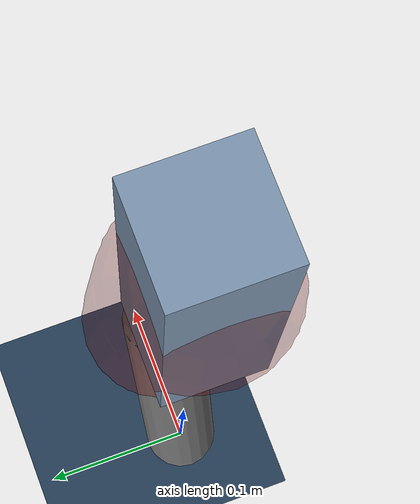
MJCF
<mujoco model="Hopper2D">
	<compiler inertiafromgeom="true" angle="radian" />
	<option timestep="0.001" integrator="implicit" cone="elliptic" solver="Newton" tolerance="1e-10" />

	<default>
		<geom contype="1" conaffinity="1" condim="3" friction="2 0.005 0.0001" solref="0.005 1" />
		<joint limited="true" damping="0.1" />
	</default>

	<asset>
		<texture name="skybox" type="skybox" builtin="gradient" rgb1=".4 .6 .8" rgb2="0 0 0" width="800" height="800" />
		<texture name="grid" type="2d" builtin="checker" rgb1=".1 .2 .3" rgb2=".2 .3 .4" width="300" height="300" mark="edge" markrgb=".2 .3 .4" />
		<material name="ground" texture="grid" texrepeat="1 1" texuniform="true" reflectance="0.1" />
		<material name="leg" rgba="0.5 0.6 0.7 1" />
	</asset>

	<worldbody>

		<geom name="floor" type="plane" size="5 5 0.25" material="ground" />

		<light directional="false" diffuse="0.8 0.8 0.8" specular="0.3 0.3 0.3" pos="0 0 2" dir="0 0 -1" />
		<light mode="targetbodycom" target="base" directional="false" diffuse="0.8 0.8 0.8" specular="0.3 0.3 0.3" pos="0 0 2" dir="0 0 -1" />

		<camera name="fixed" pos="0 -2 1" xyaxes="1 0 0 0 0 1" />
		<camera name="tracking" mode="trackcom" pos="0 -3 1" />

		<body name="root" pos="0 0 0.4259794855064507">
			<joint name="slide_x" type="slide" axis="1 0 0" range="-100 100" />
			<joint name="slide_z" type="slide" axis="0 0 1" range="0 10" />

			<body name="base" pos="0 0 0">
				<geom name="torso" type="box" size="0.03 0.03 0.1" mass="3.564" material="leg" />

				<body name="link1" pos="0 0 0" euler="0 1.380549082140739 0">
					<joint type="hinge" axis="0 -1 0" pos="0 0 0" name="hinge1" limited="true" range="-3.14 3.14" stiffness="0" damping="0.1" />
					<geom name="thigh" type="capsule" fromto="0 0 0 0.2436876953881707 0 0" size="0.05" rgba="0.5 0 0 0.3" mass="0.8400880080092439" />

					<body name="link2" pos="0.2436876953881707 0 0" euler="0 0.4322473580390267 0">
						<joint type="hinge" axis="0 -1 0" pos="0 0 0" name="hinge2" limited="true" range="-3.14 3.14" stiffness="0" damping="0.1" />
						<geom name="shank" type="capsule" fromto="0 0 0 0.19229179011828001 0 0" size="0.025" mass="0.39436261110645204" />

					</body>
				</body>
			</body>
		</body>
	</worldbody>

	<actuator>
		<motor name="torque1" joint="hinge1" ctrlrange="-127.38703163874338 127.38703163874338" ctrllimited="true" gear="1" />
		<motor name="torque2" joint="hinge2" ctrlrange="-157.36035556888766 157.36035556888766" ctrllimited="true" gear="1" />
	</actuator>
</mujoco>
